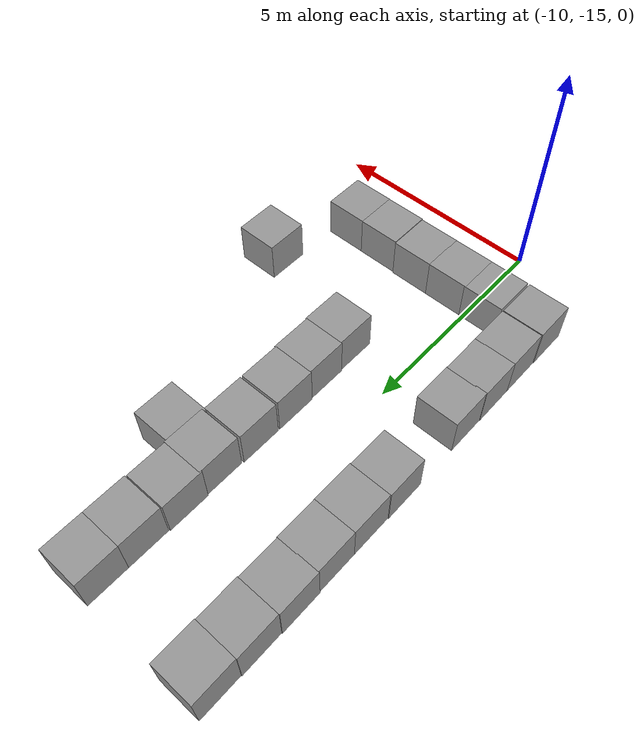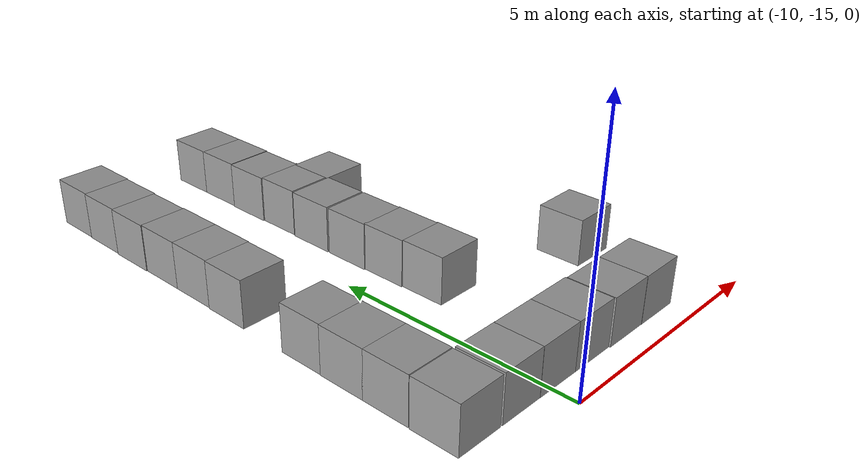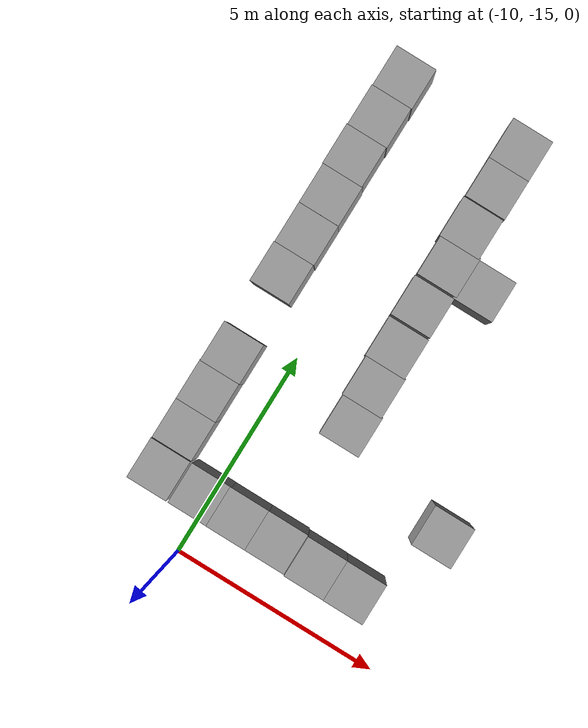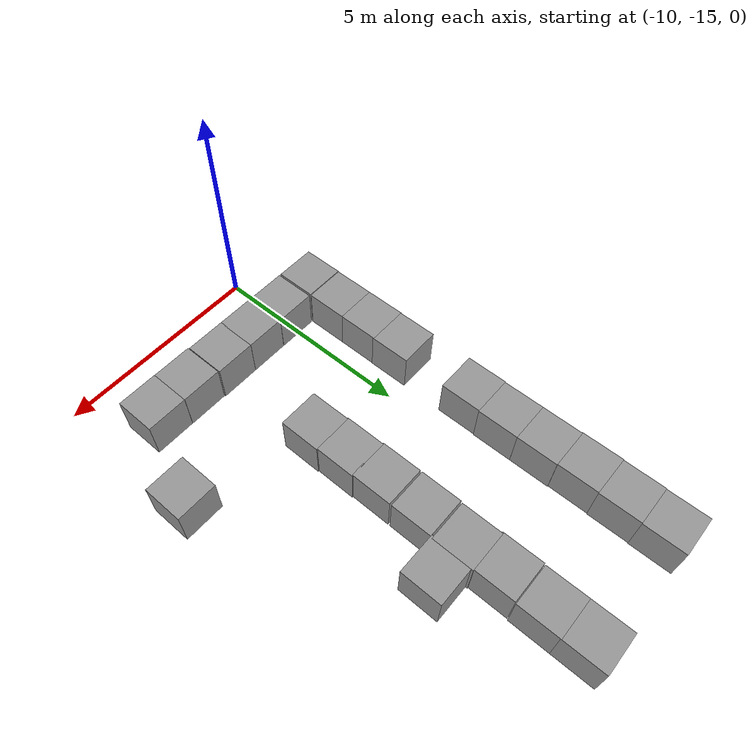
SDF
<sdf version="1.7">
 <model name="maze2.1">
  <link name="link_1_clone_123">
   <inertial>
    <mass>1</mass>
    <inertia>
     <ixx>0.166667</ixx>
     <ixy>0</ixy>
     <ixz>0</ixz>
     <iyy>0.166667</iyy>
     <iyz>0</iyz>
     <izz>0.166667</izz>
    </inertia>
   </inertial>
   <pose>-8.24503 -3.62535 0 0 -0 0</pose>
   <visual name="visual">
    <geometry><box><size>1 1 1</size></box></geometry>
    <material>
     <lighting>1</lighting>
     <script><uri>file://media/materials/scripts/gazebo.material</uri><name>Gazebo/Grey</name></script>
     <shader type="pixel"><normal_map>__default__</normal_map></shader>
     <ambient>0.3 0.3 0.3 1</ambient>
     <diffuse>0.7 0.7 0.7 1</diffuse>
     <specular>0.01 0.01 0.01 1</specular>
     <emissive>0 0 0 1</emissive>
    </material>
   </visual>
   <collision name="collision">
    <geometry><box><size>1 1 1</size></box></geometry>
    <surface>
     <friction>
      <ode><mu>1</mu><mu2>1</mu2><fdir1>0 0 0</fdir1><slip1>0</slip1><slip2>0</slip2></ode>
      <torsional>
       <coefficient>1</coefficient>
       <patch_radius>0</patch_radius>
       <surface_radius>0</surface_radius>
       <use_patch_radius>1</use_patch_radius>
       <ode><slip>0</slip></ode>
      </torsional>
     </friction>
     <bounce><restitution_coefficient>0</restitution_coefficient><threshold>1e+06</threshold></bounce>
     <contact>
      <collide_without_contact>0</collide_without_contact>
      <collide_without_contact_bitmask>1</collide_without_contact_bitmask>
      <collide_bitmask>1</collide_bitmask>
      <ode>
       <soft_cfm>0</soft_cfm>
       <soft_erp>0.2</soft_erp>
       <kp>1e+13</kp>
       <kd>1</kd>
       <max_vel>0.01</max_vel>
       <min_depth>0</min_depth>
      </ode>
      <bullet>
       <split_impulse>1</split_impulse>
       <split_impulse_penetration_threshold>-0.01</split_impulse_penetration_threshold>
       <soft_cfm>0</soft_cfm>
       <soft_erp>0.2</soft_erp>
       <kp>1e+13</kp>
       <kd>1</kd>
      </bullet>
     </contact>
    </surface>
   </collision>
  </link>
  <link name="link_1_clone_124">
   <inertial>
    <mass>1</mass>
    <inertia>
     <ixx>0.166667</ixx>
     <ixy>0</ixy>
     <ixz>0</ixz>
     <iyy>0.166667</iyy>
     <iyz>0</iyz>
     <izz>0.166667</izz>
    </inertia>
   </inertial>
   <pose>-8.24525 -4.60259 0 0 -0 0</pose>
   <visual name="visual">
    <geometry><box><size>1 1 1</size></box></geometry>
    <material>
     <lighting>1</lighting>
     <script><uri>file://media/materials/scripts/gazebo.material</uri><name>Gazebo/Grey</name></script>
     <shader type="pixel"><normal_map>__default__</normal_map></shader>
     <ambient>0.3 0.3 0.3 1</ambient>
     <diffuse>0.7 0.7 0.7 1</diffuse>
     <specular>0.01 0.01 0.01 1</specular>
     <emissive>0 0 0 1</emissive>
    </material>
   </visual>
   <collision name="collision">
    <geometry><box><size>1 1 1</size></box></geometry>
    <surface>
     <friction>
      <ode><mu>1</mu><mu2>1</mu2><fdir1>0 0 0</fdir1><slip1>0</slip1><slip2>0</slip2></ode>
      <torsional>
       <coefficient>1</coefficient>
       <patch_radius>0</patch_radius>
       <surface_radius>0</surface_radius>
       <use_patch_radius>1</use_patch_radius>
       <ode><slip>0</slip></ode>
      </torsional>
     </friction>
     <bounce><restitution_coefficient>0</restitution_coefficient><threshold>1e+06</threshold></bounce>
     <contact>
      <collide_without_contact>0</collide_without_contact>
      <collide_without_contact_bitmask>1</collide_without_contact_bitmask>
      <collide_bitmask>1</collide_bitmask>
      <ode>
       <soft_cfm>0</soft_cfm>
       <soft_erp>0.2</soft_erp>
       <kp>1e+13</kp>
       <kd>1</kd>
       <max_vel>0.01</max_vel>
       <min_depth>0</min_depth>
      </ode>
      <bullet>
       <split_impulse>1</split_impulse>
       <split_impulse_penetration_threshold>-0.01</split_impulse_penetration_threshold>
       <soft_cfm>0</soft_cfm>
       <soft_erp>0.2</soft_erp>
       <kp>1e+13</kp>
       <kd>1</kd>
      </bullet>
     </contact>
    </surface>
   </collision>
  </link>
  <link name="link_1_clone_125">
   <inertial>
    <mass>1</mass>
    <inertia>
     <ixx>0.166667</ixx>
     <ixy>0</ixy>
     <ixz>0</ixz>
     <iyy>0.166667</iyy>
     <iyz>0</iyz>
     <izz>0.166667</izz>
    </inertia>
   </inertial>
   <pose>-8.26767 -5.62535 0 0 -0 0</pose>
   <visual name="visual">
    <geometry><box><size>1 1 1</size></box></geometry>
    <material>
     <lighting>1</lighting>
     <script><uri>file://media/materials/scripts/gazebo.material</uri><name>Gazebo/Grey</name></script>
     <shader type="pixel"><normal_map>__default__</normal_map></shader>
     <ambient>0.3 0.3 0.3 1</ambient>
     <diffuse>0.7 0.7 0.7 1</diffuse>
     <specular>0.01 0.01 0.01 1</specular>
     <emissive>0 0 0 1</emissive>
    </material>
   </visual>
   <collision name="collision">
    <geometry><box><size>1 1 1</size></box></geometry>
    <surface>
     <friction>
      <ode><mu>1</mu><mu2>1</mu2><fdir1>0 0 0</fdir1><slip1>0</slip1><slip2>0</slip2></ode>
      <torsional>
       <coefficient>1</coefficient>
       <patch_radius>0</patch_radius>
       <surface_radius>0</surface_radius>
       <use_patch_radius>1</use_patch_radius>
       <ode><slip>0</slip></ode>
      </torsional>
     </friction>
     <bounce><restitution_coefficient>0</restitution_coefficient><threshold>1e+06</threshold></bounce>
     <contact>
      <collide_without_contact>0</collide_without_contact>
      <collide_without_contact_bitmask>1</collide_without_contact_bitmask>
      <collide_bitmask>1</collide_bitmask>
      <ode>
       <soft_cfm>0</soft_cfm>
       <soft_erp>0.2</soft_erp>
       <kp>1e+13</kp>
       <kd>1</kd>
       <max_vel>0.01</max_vel>
       <min_depth>0</min_depth>
      </ode>
      <bullet>
       <split_impulse>1</split_impulse>
       <split_impulse_penetration_threshold>-0.01</split_impulse_penetration_threshold>
       <soft_cfm>0</soft_cfm>
       <soft_erp>0.2</soft_erp>
       <kp>1e+13</kp>
       <kd>1</kd>
      </bullet>
     </contact>
    </surface>
   </collision>
  </link>
  <link name="link_1_clone_126">
   <inertial>
    <mass>1</mass>
    <inertia>
     <ixx>0.166667</ixx>
     <ixy>0</ixy>
     <ixz>0</ixz>
     <iyy>0.166667</iyy>
     <iyz>0</iyz>
     <izz>0.166667</izz>
    </inertia>
   </inertial>
   <pose>-8.26767 -7.62431 0 0 -0 0</pose>
   <visual name="visual">
    <geometry><box><size>1 1 1</size></box></geometry>
    <material>
     <lighting>1</lighting>
     <script><uri>file://media/materials/scripts/gazebo.material</uri><name>Gazebo/Grey</name></script>
     <shader type="pixel"><normal_map>__default__</normal_map></shader>
     <ambient>0.3 0.3 0.3 1</ambient>
     <diffuse>0.7 0.7 0.7 1</diffuse>
     <specular>0.01 0.01 0.01 1</specular>
     <emissive>0 0 0 1</emissive>
    </material>
   </visual>
   <collision name="collision">
    <geometry><box><size>1 1 1</size></box></geometry>
    <surface>
     <friction>
      <ode><mu>1</mu><mu2>1</mu2><fdir1>0 0 0</fdir1><slip1>0</slip1><slip2>0</slip2></ode>
      <torsional>
       <coefficient>1</coefficient>
       <patch_radius>0</patch_radius>
       <surface_radius>0</surface_radius>
       <use_patch_radius>1</use_patch_radius>
       <ode><slip>0</slip></ode>
      </torsional>
     </friction>
     <bounce><restitution_coefficient>0</restitution_coefficient><threshold>1e+06</threshold></bounce>
     <contact>
      <collide_without_contact>0</collide_without_contact>
      <collide_without_contact_bitmask>1</collide_without_contact_bitmask>
      <collide_bitmask>1</collide_bitmask>
      <ode>
       <soft_cfm>0</soft_cfm>
       <soft_erp>0.2</soft_erp>
       <kp>1e+13</kp>
       <kd>1</kd>
       <max_vel>0.01</max_vel>
       <min_depth>0</min_depth>
      </ode>
      <bullet>
       <split_impulse>1</split_impulse>
       <split_impulse_penetration_threshold>-0.01</split_impulse_penetration_threshold>
       <soft_cfm>0</soft_cfm>
       <soft_erp>0.2</soft_erp>
       <kp>1e+13</kp>
       <kd>1</kd>
      </bullet>
     </contact>
    </surface>
   </collision>
  </link>
  <link name="link_1_clone_127">
   <inertial>
    <mass>1</mass>
    <inertia>
     <ixx>0.166667</ixx>
     <ixy>0</ixy>
     <ixz>0</ixz>
     <iyy>0.166667</iyy>
     <iyz>0</iyz>
     <izz>0.166667</izz>
    </inertia>
   </inertial>
   <pose>-8.26778 -8.6697 0 0 -0 0</pose>
   <visual name="visual">
    <geometry><box><size>1 1 1</size></box></geometry>
    <material>
     <lighting>1</lighting>
     <script><uri>file://media/materials/scripts/gazebo.material</uri><name>Gazebo/Grey</name></script>
     <shader type="pixel"><normal_map>__default__</normal_map></shader>
     <ambient>0.3 0.3 0.3 1</ambient>
     <diffuse>0.7 0.7 0.7 1</diffuse>
     <specular>0.01 0.01 0.01 1</specular>
     <emissive>0 0 0 1</emissive>
    </material>
   </visual>
   <collision name="collision">
    <geometry><box><size>1 1 1</size></box></geometry>
    <surface>
     <friction>
      <ode><mu>1</mu><mu2>1</mu2><fdir1>0 0 0</fdir1><slip1>0</slip1><slip2>0</slip2></ode>
      <torsional>
       <coefficient>1</coefficient>
       <patch_radius>0</patch_radius>
       <surface_radius>0</surface_radius>
       <use_patch_radius>1</use_patch_radius>
       <ode><slip>0</slip></ode>
      </torsional>
     </friction>
     <bounce><restitution_coefficient>0</restitution_coefficient><threshold>1e+06</threshold></bounce>
     <contact>
      <collide_without_contact>0</collide_without_contact>
      <collide_without_contact_bitmask>1</collide_without_contact_bitmask>
      <collide_bitmask>1</collide_bitmask>
      <ode>
       <soft_cfm>0</soft_cfm>
       <soft_erp>0.2</soft_erp>
       <kp>1e+13</kp>
       <kd>1</kd>
       <max_vel>0.01</max_vel>
       <min_depth>0</min_depth>
      </ode>
      <bullet>
       <split_impulse>1</split_impulse>
       <split_impulse_penetration_threshold>-0.01</split_impulse_penetration_threshold>
       <soft_cfm>0</soft_cfm>
       <soft_erp>0.2</soft_erp>
       <kp>1e+13</kp>
       <kd>1</kd>
      </bullet>
     </contact>
    </surface>
   </collision>
  </link>
  <link name="link_1_clone_128">
   <inertial>
    <mass>1</mass>
    <inertia>
     <ixx>0.166667</ixx>
     <ixy>0</ixy>
     <ixz>0</ixz>
     <iyy>0.166667</iyy>
     <iyz>0</iyz>
     <izz>0.166667</izz>
    </inertia>
   </inertial>
   <pose>-8.24503 -9.64706 0 0 -0 0</pose>
   <visual name="visual">
    <geometry><box><size>1 1 1</size></box></geometry>
    <material>
     <lighting>1</lighting>
     <script><uri>file://media/materials/scripts/gazebo.material</uri><name>Gazebo/Grey</name></script>
     <shader type="pixel"><normal_map>__default__</normal_map></shader>
     <ambient>0.3 0.3 0.3 1</ambient>
     <diffuse>0.7 0.7 0.7 1</diffuse>
     <specular>0.01 0.01 0.01 1</specular>
     <emissive>0 0 0 1</emissive>
    </material>
   </visual>
   <collision name="collision">
    <geometry><box><size>1 1 1</size></box></geometry>
    <surface>
     <friction>
      <ode><mu>1</mu><mu2>1</mu2><fdir1>0 0 0</fdir1><slip1>0</slip1><slip2>0</slip2></ode>
      <torsional>
       <coefficient>1</coefficient>
       <patch_radius>0</patch_radius>
       <surface_radius>0</surface_radius>
       <use_patch_radius>1</use_patch_radius>
       <ode><slip>0</slip></ode>
      </torsional>
     </friction>
     <bounce><restitution_coefficient>0</restitution_coefficient><threshold>1e+06</threshold></bounce>
     <contact>
      <collide_without_contact>0</collide_without_contact>
      <collide_without_contact_bitmask>1</collide_without_contact_bitmask>
      <collide_bitmask>1</collide_bitmask>
      <ode>
       <soft_cfm>0</soft_cfm>
       <soft_erp>0.2</soft_erp>
       <kp>1e+13</kp>
       <kd>1</kd>
       <max_vel>0.01</max_vel>
       <min_depth>0</min_depth>
      </ode>
      <bullet>
       <split_impulse>1</split_impulse>
       <split_impulse_penetration_threshold>-0.01</split_impulse_penetration_threshold>
       <soft_cfm>0</soft_cfm>
       <soft_erp>0.2</soft_erp>
       <kp>1e+13</kp>
       <kd>1</kd>
      </bullet>
     </contact>
    </surface>
   </collision>
  </link>
  <link name="link_1_clone_129">
   <inertial>
    <mass>1</mass>
    <inertia>
     <ixx>0.166667</ixx>
     <ixy>0</ixy>
     <ixz>0</ixz>
     <iyy>0.166667</iyy>
     <iyz>0</iyz>
     <izz>0.166667</izz>
    </inertia>
   </inertial>
   <pose>-8.2226 -10.6244 0 0 -0 0</pose>
   <visual name="visual">
    <geometry><box><size>1 1 1</size></box></geometry>
    <material>
     <lighting>1</lighting>
     <script><uri>file://media/materials/scripts/gazebo.material</uri><name>Gazebo/Grey</name></script>
     <shader type="pixel"><normal_map>__default__</normal_map></shader>
     <ambient>0.3 0.3 0.3 1</ambient>
     <diffuse>0.7 0.7 0.7 1</diffuse>
     <specular>0.01 0.01 0.01 1</specular>
     <emissive>0 0 0 1</emissive>
    </material>
   </visual>
   <collision name="collision">
    <geometry><box><size>1 1 1</size></box></geometry>
    <surface>
     <friction>
      <ode><mu>1</mu><mu2>1</mu2><fdir1>0 0 0</fdir1><slip1>0</slip1><slip2>0</slip2></ode>
      <torsional>
       <coefficient>1</coefficient>
       <patch_radius>0</patch_radius>
       <surface_radius>0</surface_radius>
       <use_patch_radius>1</use_patch_radius>
       <ode><slip>0</slip></ode>
      </torsional>
     </friction>
     <bounce><restitution_coefficient>0</restitution_coefficient><threshold>1e+06</threshold></bounce>
     <contact>
      <collide_without_contact>0</collide_without_contact>
      <collide_without_contact_bitmask>1</collide_without_contact_bitmask>
      <collide_bitmask>1</collide_bitmask>
      <ode>
       <soft_cfm>0</soft_cfm>
       <soft_erp>0.2</soft_erp>
       <kp>1e+13</kp>
       <kd>1</kd>
       <max_vel>0.01</max_vel>
       <min_depth>0</min_depth>
      </ode>
      <bullet>
       <split_impulse>1</split_impulse>
       <split_impulse_penetration_threshold>-0.01</split_impulse_penetration_threshold>
       <soft_cfm>0</soft_cfm>
       <soft_erp>0.2</soft_erp>
       <kp>1e+13</kp>
       <kd>1</kd>
      </bullet>
     </contact>
    </surface>
   </collision>
  </link>
  <link name="link_1_clone_131">
   <inertial>
    <mass>1</mass>
    <inertia>
     <ixx>0.166667</ixx>
     <ixy>0</ixy>
     <ixz>0</ixz>
     <iyy>0.166667</iyy>
     <iyz>0</iyz>
     <izz>0.166667</izz>
    </inertia>
   </inertial>
   <pose>-5.26156 -11.6208 0 0 -0 0</pose>
   <visual name="visual">
    <geometry><box><size>1 1 1</size></box></geometry>
    <material>
     <lighting>1</lighting>
     <script><uri>file://media/materials/scripts/gazebo.material</uri><name>Gazebo/Grey</name></script>
     <shader type="pixel"><normal_map>__default__</normal_map></shader>
     <ambient>0.3 0.3 0.3 1</ambient>
     <diffuse>0.7 0.7 0.7 1</diffuse>
     <specular>0.01 0.01 0.01 1</specular>
     <emissive>0 0 0 1</emissive>
    </material>
   </visual>
   <collision name="collision">
    <geometry><box><size>1 1 1</size></box></geometry>
    <surface>
     <friction>
      <ode><mu>1</mu><mu2>1</mu2><fdir1>0 0 0</fdir1><slip1>0</slip1><slip2>0</slip2></ode>
      <torsional>
       <coefficient>1</coefficient>
       <patch_radius>0</patch_radius>
       <surface_radius>0</surface_radius>
       <use_patch_radius>1</use_patch_radius>
       <ode><slip>0</slip></ode>
      </torsional>
     </friction>
     <bounce><restitution_coefficient>0</restitution_coefficient><threshold>1e+06</threshold></bounce>
     <contact>
      <collide_without_contact>0</collide_without_contact>
      <collide_without_contact_bitmask>1</collide_without_contact_bitmask>
      <collide_bitmask>1</collide_bitmask>
      <ode>
       <soft_cfm>0</soft_cfm>
       <soft_erp>0.2</soft_erp>
       <kp>1e+13</kp>
       <kd>1</kd>
       <max_vel>0.01</max_vel>
       <min_depth>0</min_depth>
      </ode>
      <bullet>
       <split_impulse>1</split_impulse>
       <split_impulse_penetration_threshold>-0.01</split_impulse_penetration_threshold>
       <soft_cfm>0</soft_cfm>
       <soft_erp>0.2</soft_erp>
       <kp>1e+13</kp>
       <kd>1</kd>
      </bullet>
     </contact>
    </surface>
   </collision>
  </link>
  <link name="link_1_clone_210">
   <inertial>
    <mass>1</mass>
    <inertia>
     <ixx>0.166667</ixx>
     <ixy>0</ixy>
     <ixz>0</ixz>
     <iyy>0.166667</iyy>
     <iyz>0</iyz>
     <izz>0.166667</izz>
    </inertia>
   </inertial>
   <pose>-8.24377 -6.57996 0 0 -0 0</pose>
   <visual name="visual">
    <geometry><box><size>1 1 1</size></box></geometry>
    <material>
     <lighting>1</lighting>
     <script><uri>file://media/materials/scripts/gazebo.material</uri><name>Gazebo/Grey</name></script>
     <shader type="pixel"><normal_map>__default__</normal_map></shader>
     <ambient>0.3 0.3 0.3 1</ambient>
     <diffuse>0.7 0.7 0.7 1</diffuse>
     <specular>0.01 0.01 0.01 1</specular>
     <emissive>0 0 0 1</emissive>
    </material>
   </visual>
   <collision name="collision">
    <geometry><box><size>1 1 1</size></box></geometry>
    <surface>
     <friction>
      <ode><mu>1</mu><mu2>1</mu2><fdir1>0 0 0</fdir1><slip1>0</slip1><slip2>0</slip2></ode>
      <torsional>
       <coefficient>1</coefficient>
       <patch_radius>0</patch_radius>
       <surface_radius>0</surface_radius>
       <use_patch_radius>1</use_patch_radius>
       <ode><slip>0</slip></ode>
      </torsional>
     </friction>
     <bounce><restitution_coefficient>0</restitution_coefficient><threshold>1e+06</threshold></bounce>
     <contact>
      <collide_without_contact>0</collide_without_contact>
      <collide_without_contact_bitmask>1</collide_without_contact_bitmask>
      <collide_bitmask>1</collide_bitmask>
      <ode>
       <soft_cfm>0</soft_cfm>
       <soft_erp>0.2</soft_erp>
       <kp>1e+13</kp>
       <kd>1</kd>
       <max_vel>0.01</max_vel>
       <min_depth>0</min_depth>
      </ode>
      <bullet>
       <split_impulse>1</split_impulse>
       <split_impulse_penetration_threshold>-0.01</split_impulse_penetration_threshold>
       <soft_cfm>0</soft_cfm>
       <soft_erp>0.2</soft_erp>
       <kp>1e+13</kp>
       <kd>1</kd>
      </bullet>
     </contact>
    </surface>
   </collision>
  </link>
  <link name="link_1_clone_211">
   <inertial>
    <mass>1</mass>
    <inertia>
     <ixx>0.166667</ixx>
     <ixy>0</ixy>
     <ixz>0</ixz>
     <iyy>0.166667</iyy>
     <iyz>0</iyz>
     <izz>0.166667</izz>
    </inertia>
   </inertial>
   <pose>-7.31224 -6.62535 0 0 -0 0</pose>
   <visual name="visual">
    <geometry><box><size>1 1 1</size></box></geometry>
    <material>
     <lighting>1</lighting>
     <script><uri>file://media/materials/scripts/gazebo.material</uri><name>Gazebo/Grey</name></script>
     <shader type="pixel"><normal_map>__default__</normal_map></shader>
     <ambient>0.3 0.3 0.3 1</ambient>
     <diffuse>0.7 0.7 0.7 1</diffuse>
     <specular>0.01 0.01 0.01 1</specular>
     <emissive>0 0 0 1</emissive>
    </material>
   </visual>
   <collision name="collision">
    <geometry><box><size>1 1 1</size></box></geometry>
    <surface>
     <friction>
      <ode><mu>1</mu><mu2>1</mu2><fdir1>0 0 0</fdir1><slip1>0</slip1><slip2>0</slip2></ode>
      <torsional>
       <coefficient>1</coefficient>
       <patch_radius>0</patch_radius>
       <surface_radius>0</surface_radius>
       <use_patch_radius>1</use_patch_radius>
       <ode><slip>0</slip></ode>
      </torsional>
     </friction>
     <bounce><restitution_coefficient>0</restitution_coefficient><threshold>1e+06</threshold></bounce>
     <contact>
      <collide_without_contact>0</collide_without_contact>
      <collide_without_contact_bitmask>1</collide_without_contact_bitmask>
      <collide_bitmask>1</collide_bitmask>
      <ode>
       <soft_cfm>0</soft_cfm>
       <soft_erp>0.2</soft_erp>
       <kp>1e+13</kp>
       <kd>1</kd>
       <max_vel>0.01</max_vel>
       <min_depth>0</min_depth>
      </ode>
      <bullet>
       <split_impulse>1</split_impulse>
       <split_impulse_penetration_threshold>-0.01</split_impulse_penetration_threshold>
       <soft_cfm>0</soft_cfm>
       <soft_erp>0.2</soft_erp>
       <kp>1e+13</kp>
       <kd>1</kd>
      </bullet>
     </contact>
    </surface>
   </collision>
  </link>
  <link name="link_1_clone_28">
   <inertial>
    <mass>1</mass>
    <inertia>
     <ixx>0.166667</ixx>
     <ixy>0</ixy>
     <ixz>0</ixz>
     <iyy>0.166667</iyy>
     <iyz>0</iyz>
     <izz>0.166667</izz>
    </inertia>
   </inertial>
   <pose>-11.2109 -3.62535 0 0 -0 0</pose>
   <visual name="visual">
    <geometry><box><size>1 1 1</size></box></geometry>
    <material>
     <lighting>1</lighting>
     <script><uri>file://media/materials/scripts/gazebo.material</uri><name>Gazebo/Grey</name></script>
     <shader type="pixel"><normal_map>__default__</normal_map></shader>
     <ambient>0.3 0.3 0.3 1</ambient>
     <diffuse>0.7 0.7 0.7 1</diffuse>
     <specular>0.01 0.01 0.01 1</specular>
     <emissive>0 0 0 1</emissive>
    </material>
   </visual>
   <collision name="collision">
    <geometry><box><size>1 1 1</size></box></geometry>
    <surface>
     <friction>
      <ode><mu>1</mu><mu2>1</mu2><fdir1>0 0 0</fdir1><slip1>0</slip1><slip2>0</slip2></ode>
      <torsional>
       <coefficient>1</coefficient>
       <patch_radius>0</patch_radius>
       <surface_radius>0</surface_radius>
       <use_patch_radius>1</use_patch_radius>
       <ode><slip>0</slip></ode>
      </torsional>
     </friction>
     <bounce><restitution_coefficient>0</restitution_coefficient><threshold>1e+06</threshold></bounce>
     <contact>
      <collide_without_contact>0</collide_without_contact>
      <collide_without_contact_bitmask>1</collide_without_contact_bitmask>
      <collide_bitmask>1</collide_bitmask>
      <ode>
       <soft_cfm>0</soft_cfm>
       <soft_erp>0.2</soft_erp>
       <kp>1e+13</kp>
       <kd>1</kd>
       <max_vel>0.01</max_vel>
       <min_depth>0</min_depth>
      </ode>
      <bullet>
       <split_impulse>1</split_impulse>
       <split_impulse_penetration_threshold>-0.01</split_impulse_penetration_threshold>
       <soft_cfm>0</soft_cfm>
       <soft_erp>0.2</soft_erp>
       <kp>1e+13</kp>
       <kd>1</kd>
      </bullet>
     </contact>
    </surface>
   </collision>
  </link>
  <link name="link_1_clone_29">
   <inertial>
    <mass>1</mass>
    <inertia>
     <ixx>0.166667</ixx>
     <ixy>0</ixy>
     <ixz>0</ixz>
     <iyy>0.166667</iyy>
     <iyz>0</iyz>
     <izz>0.166667</izz>
    </inertia>
   </inertial>
   <pose>-11.2263 -4.62535 0 0 -0 0</pose>
   <visual name="visual">
    <geometry><box><size>1 1 1</size></box></geometry>
    <material>
     <lighting>1</lighting>
     <script><uri>file://media/materials/scripts/gazebo.material</uri><name>Gazebo/Grey</name></script>
     <shader type="pixel"><normal_map>__default__</normal_map></shader>
     <ambient>0.3 0.3 0.3 1</ambient>
     <diffuse>0.7 0.7 0.7 1</diffuse>
     <specular>0.01 0.01 0.01 1</specular>
     <emissive>0 0 0 1</emissive>
    </material>
   </visual>
   <collision name="collision">
    <geometry><box><size>1 1 1</size></box></geometry>
    <surface>
     <friction>
      <ode><mu>1</mu><mu2>1</mu2><fdir1>0 0 0</fdir1><slip1>0</slip1><slip2>0</slip2></ode>
      <torsional>
       <coefficient>1</coefficient>
       <patch_radius>0</patch_radius>
       <surface_radius>0</surface_radius>
       <use_patch_radius>1</use_patch_radius>
       <ode><slip>0</slip></ode>
      </torsional>
     </friction>
     <bounce><restitution_coefficient>0</restitution_coefficient><threshold>1e+06</threshold></bounce>
     <contact>
      <collide_without_contact>0</collide_without_contact>
      <collide_without_contact_bitmask>1</collide_without_contact_bitmask>
      <collide_bitmask>1</collide_bitmask>
      <ode>
       <soft_cfm>0</soft_cfm>
       <soft_erp>0.2</soft_erp>
       <kp>1e+13</kp>
       <kd>1</kd>
       <max_vel>0.01</max_vel>
       <min_depth>0</min_depth>
      </ode>
      <bullet>
       <split_impulse>1</split_impulse>
       <split_impulse_penetration_threshold>-0.01</split_impulse_penetration_threshold>
       <soft_cfm>0</soft_cfm>
       <soft_erp>0.2</soft_erp>
       <kp>1e+13</kp>
       <kd>1</kd>
      </bullet>
     </contact>
    </surface>
   </collision>
  </link>
  <link name="link_1_clone_30">
   <inertial>
    <mass>1</mass>
    <inertia>
     <ixx>0.166667</ixx>
     <ixy>0</ixy>
     <ixz>0</ixz>
     <iyy>0.166667</iyy>
     <iyz>0</iyz>
     <izz>0.166667</izz>
    </inertia>
   </inertial>
   <pose>-11.2415 -5.62535 0 0 -0 0</pose>
   <visual name="visual">
    <geometry><box><size>1 1 1</size></box></geometry>
    <material>
     <lighting>1</lighting>
     <script><uri>file://media/materials/scripts/gazebo.material</uri><name>Gazebo/Grey</name></script>
     <shader type="pixel"><normal_map>__default__</normal_map></shader>
     <ambient>0.3 0.3 0.3 1</ambient>
     <diffuse>0.7 0.7 0.7 1</diffuse>
     <specular>0.01 0.01 0.01 1</specular>
     <emissive>0 0 0 1</emissive>
    </material>
   </visual>
   <collision name="collision">
    <geometry><box><size>1 1 1</size></box></geometry>
    <surface>
     <friction>
      <ode><mu>1</mu><mu2>1</mu2><fdir1>0 0 0</fdir1><slip1>0</slip1><slip2>0</slip2></ode>
      <torsional>
       <coefficient>1</coefficient>
       <patch_radius>0</patch_radius>
       <surface_radius>0</surface_radius>
       <use_patch_radius>1</use_patch_radius>
       <ode><slip>0</slip></ode>
      </torsional>
     </friction>
     <bounce><restitution_coefficient>0</restitution_coefficient><threshold>1e+06</threshold></bounce>
     <contact>
      <collide_without_contact>0</collide_without_contact>
      <collide_without_contact_bitmask>1</collide_without_contact_bitmask>
      <collide_bitmask>1</collide_bitmask>
      <ode>
       <soft_cfm>0</soft_cfm>
       <soft_erp>0.2</soft_erp>
       <kp>1e+13</kp>
       <kd>1</kd>
       <max_vel>0.01</max_vel>
       <min_depth>0</min_depth>
      </ode>
      <bullet>
       <split_impulse>1</split_impulse>
       <split_impulse_penetration_threshold>-0.01</split_impulse_penetration_threshold>
       <soft_cfm>0</soft_cfm>
       <soft_erp>0.2</soft_erp>
       <kp>1e+13</kp>
       <kd>1</kd>
      </bullet>
     </contact>
    </surface>
   </collision>
  </link>
  <link name="link_1_clone_31">
   <inertial>
    <mass>1</mass>
    <inertia>
     <ixx>0.166667</ixx>
     <ixy>0</ixy>
     <ixz>0</ixz>
     <iyy>0.166667</iyy>
     <iyz>0</iyz>
     <izz>0.166667</izz>
    </inertia>
   </inertial>
   <pose>-11.2262 -6.60997 0 0 -0 0</pose>
   <visual name="visual">
    <geometry><box><size>1 1 1</size></box></geometry>
    <material>
     <lighting>1</lighting>
     <script><uri>file://media/materials/scripts/gazebo.material</uri><name>Gazebo/Grey</name></script>
     <shader type="pixel"><normal_map>__default__</normal_map></shader>
     <ambient>0.3 0.3 0.3 1</ambient>
     <diffuse>0.7 0.7 0.7 1</diffuse>
     <specular>0.01 0.01 0.01 1</specular>
     <emissive>0 0 0 1</emissive>
    </material>
   </visual>
   <collision name="collision">
    <geometry><box><size>1 1 1</size></box></geometry>
    <surface>
     <friction>
      <ode><mu>1</mu><mu2>1</mu2><fdir1>0 0 0</fdir1><slip1>0</slip1><slip2>0</slip2></ode>
      <torsional>
       <coefficient>1</coefficient>
       <patch_radius>0</patch_radius>
       <surface_radius>0</surface_radius>
       <use_patch_radius>1</use_patch_radius>
       <ode><slip>0</slip></ode>
      </torsional>
     </friction>
     <bounce><restitution_coefficient>0</restitution_coefficient><threshold>1e+06</threshold></bounce>
     <contact>
      <collide_without_contact>0</collide_without_contact>
      <collide_without_contact_bitmask>1</collide_without_contact_bitmask>
      <collide_bitmask>1</collide_bitmask>
      <ode>
       <soft_cfm>0</soft_cfm>
       <soft_erp>0.2</soft_erp>
       <kp>1e+13</kp>
       <kd>1</kd>
       <max_vel>0.01</max_vel>
       <min_depth>0</min_depth>
      </ode>
      <bullet>
       <split_impulse>1</split_impulse>
       <split_impulse_penetration_threshold>-0.01</split_impulse_penetration_threshold>
       <soft_cfm>0</soft_cfm>
       <soft_erp>0.2</soft_erp>
       <kp>1e+13</kp>
       <kd>1</kd>
      </bullet>
     </contact>
    </surface>
   </collision>
  </link>
  <link name="link_1_clone_32">
   <inertial>
    <mass>1</mass>
    <inertia>
     <ixx>0.166667</ixx>
     <ixy>0</ixy>
     <ixz>0</ixz>
     <iyy>0.166667</iyy>
     <iyz>0</iyz>
     <izz>0.166667</izz>
    </inertia>
   </inertial>
   <pose>-11.2262 -7.61004 0 0 -0 0</pose>
   <visual name="visual">
    <geometry><box><size>1 1 1</size></box></geometry>
    <material>
     <lighting>1</lighting>
     <script><uri>file://media/materials/scripts/gazebo.material</uri><name>Gazebo/Grey</name></script>
     <shader type="pixel"><normal_map>__default__</normal_map></shader>
     <ambient>0.3 0.3 0.3 1</ambient>
     <diffuse>0.7 0.7 0.7 1</diffuse>
     <specular>0.01 0.01 0.01 1</specular>
     <emissive>0 0 0 1</emissive>
    </material>
   </visual>
   <collision name="collision">
    <geometry><box><size>1 1 1</size></box></geometry>
    <surface>
     <friction>
      <ode><mu>1</mu><mu2>1</mu2><fdir1>0 0 0</fdir1><slip1>0</slip1><slip2>0</slip2></ode>
      <torsional>
       <coefficient>1</coefficient>
       <patch_radius>0</patch_radius>
       <surface_radius>0</surface_radius>
       <use_patch_radius>1</use_patch_radius>
       <ode><slip>0</slip></ode>
      </torsional>
     </friction>
     <bounce><restitution_coefficient>0</restitution_coefficient><threshold>1e+06</threshold></bounce>
     <contact>
      <collide_without_contact>0</collide_without_contact>
      <collide_without_contact_bitmask>1</collide_without_contact_bitmask>
      <collide_bitmask>1</collide_bitmask>
      <ode>
       <soft_cfm>0</soft_cfm>
       <soft_erp>0.2</soft_erp>
       <kp>1e+13</kp>
       <kd>1</kd>
       <max_vel>0.01</max_vel>
       <min_depth>0</min_depth>
      </ode>
      <bullet>
       <split_impulse>1</split_impulse>
       <split_impulse_penetration_threshold>-0.01</split_impulse_penetration_threshold>
       <soft_cfm>0</soft_cfm>
       <soft_erp>0.2</soft_erp>
       <kp>1e+13</kp>
       <kd>1</kd>
      </bullet>
     </contact>
    </surface>
   </collision>
  </link>
  <link name="link_1_clone_33">
   <inertial>
    <mass>1</mass>
    <inertia>
     <ixx>0.166667</ixx>
     <ixy>0</ixy>
     <ixz>0</ixz>
     <iyy>0.166667</iyy>
     <iyz>0</iyz>
     <izz>0.166667</izz>
    </inertia>
   </inertial>
   <pose>-11.2415 -8.61004 0 0 -0 0</pose>
   <visual name="visual">
    <geometry><box><size>1 1 1</size></box></geometry>
    <material>
     <lighting>1</lighting>
     <script><uri>file://media/materials/scripts/gazebo.material</uri><name>Gazebo/Grey</name></script>
     <shader type="pixel"><normal_map>__default__</normal_map></shader>
     <ambient>0.3 0.3 0.3 1</ambient>
     <diffuse>0.7 0.7 0.7 1</diffuse>
     <specular>0.01 0.01 0.01 1</specular>
     <emissive>0 0 0 1</emissive>
    </material>
   </visual>
   <collision name="collision">
    <geometry><box><size>1 1 1</size></box></geometry>
    <surface>
     <friction>
      <ode><mu>1</mu><mu2>1</mu2><fdir1>0 0 0</fdir1><slip1>0</slip1><slip2>0</slip2></ode>
      <torsional>
       <coefficient>1</coefficient>
       <patch_radius>0</patch_radius>
       <surface_radius>0</surface_radius>
       <use_patch_radius>1</use_patch_radius>
       <ode><slip>0</slip></ode>
      </torsional>
     </friction>
     <bounce><restitution_coefficient>0</restitution_coefficient><threshold>1e+06</threshold></bounce>
     <contact>
      <collide_without_contact>0</collide_without_contact>
      <collide_without_contact_bitmask>1</collide_without_contact_bitmask>
      <collide_bitmask>1</collide_bitmask>
      <ode>
       <soft_cfm>0</soft_cfm>
       <soft_erp>0.2</soft_erp>
       <kp>1e+13</kp>
       <kd>1</kd>
       <max_vel>0.01</max_vel>
       <min_depth>0</min_depth>
      </ode>
      <bullet>
       <split_impulse>1</split_impulse>
       <split_impulse_penetration_threshold>-0.01</split_impulse_penetration_threshold>
       <soft_cfm>0</soft_cfm>
       <soft_erp>0.2</soft_erp>
       <kp>1e+13</kp>
       <kd>1</kd>
      </bullet>
     </contact>
    </surface>
   </collision>
  </link>
  <link name="link_1_clone_34">
   <inertial>
    <mass>1</mass>
    <inertia>
     <ixx>0.166667</ixx>
     <ixy>0</ixy>
     <ixz>0</ixz>
     <iyy>0.166667</iyy>
     <iyz>0</iyz>
     <izz>0.166667</izz>
    </inertia>
   </inertial>
   <pose>-11.2415 -10.6407 0 0 -0 0</pose>
   <visual name="visual">
    <geometry><box><size>1 1 1</size></box></geometry>
    <material>
     <lighting>1</lighting>
     <script><uri>file://media/materials/scripts/gazebo.material</uri><name>Gazebo/Grey</name></script>
     <shader type="pixel"><normal_map>__default__</normal_map></shader>
     <ambient>0.3 0.3 0.3 1</ambient>
     <diffuse>0.7 0.7 0.7 1</diffuse>
     <specular>0.01 0.01 0.01 1</specular>
     <emissive>0 0 0 1</emissive>
    </material>
   </visual>
   <collision name="collision">
    <geometry><box><size>1 1 1</size></box></geometry>
    <surface>
     <friction>
      <ode><mu>1</mu><mu2>1</mu2><fdir1>0 0 0</fdir1><slip1>0</slip1><slip2>0</slip2></ode>
      <torsional>
       <coefficient>1</coefficient>
       <patch_radius>0</patch_radius>
       <surface_radius>0</surface_radius>
       <use_patch_radius>1</use_patch_radius>
       <ode><slip>0</slip></ode>
      </torsional>
     </friction>
     <bounce><restitution_coefficient>0</restitution_coefficient><threshold>1e+06</threshold></bounce>
     <contact>
      <collide_without_contact>0</collide_without_contact>
      <collide_without_contact_bitmask>1</collide_without_contact_bitmask>
      <collide_bitmask>1</collide_bitmask>
      <ode>
       <soft_cfm>0</soft_cfm>
       <soft_erp>0.2</soft_erp>
       <kp>1e+13</kp>
       <kd>1</kd>
       <max_vel>0.01</max_vel>
       <min_depth>0</min_depth>
      </ode>
      <bullet>
       <split_impulse>1</split_impulse>
       <split_impulse_penetration_threshold>-0.01</split_impulse_penetration_threshold>
       <soft_cfm>0</soft_cfm>
       <soft_erp>0.2</soft_erp>
       <kp>1e+13</kp>
       <kd>1</kd>
      </bullet>
     </contact>
    </surface>
   </collision>
  </link>
  <link name="link_1_clone_35">
   <inertial>
    <mass>1</mass>
    <inertia>
     <ixx>0.166667</ixx>
     <ixy>0</ixy>
     <ixz>0</ixz>
     <iyy>0.166667</iyy>
     <iyz>0</iyz>
     <izz>0.166667</izz>
    </inertia>
   </inertial>
   <pose>-8.26163 -13.6209 0 0 -0 0</pose>
   <visual name="visual">
    <geometry><box><size>1 1 1</size></box></geometry>
    <material>
     <lighting>1</lighting>
     <script><uri>file://media/materials/scripts/gazebo.material</uri><name>Gazebo/Grey</name></script>
     <shader type="pixel"><normal_map>__default__</normal_map></shader>
     <ambient>0.3 0.3 0.3 1</ambient>
     <diffuse>0.7 0.7 0.7 1</diffuse>
     <specular>0.01 0.01 0.01 1</specular>
     <emissive>0 0 0 1</emissive>
    </material>
   </visual>
   <collision name="collision">
    <geometry><box><size>1 1 1</size></box></geometry>
    <surface>
     <friction>
      <ode><mu>1</mu><mu2>1</mu2><fdir1>0 0 0</fdir1><slip1>0</slip1><slip2>0</slip2></ode>
      <torsional>
       <coefficient>1</coefficient>
       <patch_radius>0</patch_radius>
       <surface_radius>0</surface_radius>
       <use_patch_radius>1</use_patch_radius>
       <ode><slip>0</slip></ode>
      </torsional>
     </friction>
     <bounce><restitution_coefficient>0</restitution_coefficient><threshold>1e+06</threshold></bounce>
     <contact>
      <collide_without_contact>0</collide_without_contact>
      <collide_without_contact_bitmask>1</collide_without_contact_bitmask>
      <collide_bitmask>1</collide_bitmask>
      <ode>
       <soft_cfm>0</soft_cfm>
       <soft_erp>0.2</soft_erp>
       <kp>1e+13</kp>
       <kd>1</kd>
       <max_vel>0.01</max_vel>
       <min_depth>0</min_depth>
      </ode>
      <bullet>
       <split_impulse>1</split_impulse>
       <split_impulse_penetration_threshold>-0.01</split_impulse_penetration_threshold>
       <soft_cfm>0</soft_cfm>
       <soft_erp>0.2</soft_erp>
       <kp>1e+13</kp>
       <kd>1</kd>
      </bullet>
     </contact>
    </surface>
   </collision>
  </link>
  <link name="link_1_clone_36">
   <inertial>
    <mass>1</mass>
    <inertia>
     <ixx>0.166667</ixx>
     <ixy>0</ixy>
     <ixz>0</ixz>
     <iyy>0.166667</iyy>
     <iyz>0</iyz>
     <izz>0.166667</izz>
    </inertia>
   </inertial>
   <pose>-9.24618 -13.6206 0 0 -0 0</pose>
   <visual name="visual">
    <geometry><box><size>1 1 1</size></box></geometry>
    <material>
     <lighting>1</lighting>
     <script><uri>file://media/materials/scripts/gazebo.material</uri><name>Gazebo/Grey</name></script>
     <shader type="pixel"><normal_map>__default__</normal_map></shader>
     <ambient>0.3 0.3 0.3 1</ambient>
     <diffuse>0.7 0.7 0.7 1</diffuse>
     <specular>0.01 0.01 0.01 1</specular>
     <emissive>0 0 0 1</emissive>
    </material>
   </visual>
   <collision name="collision">
    <geometry><box><size>1 1 1</size></box></geometry>
    <surface>
     <friction>
      <ode><mu>1</mu><mu2>1</mu2><fdir1>0 0 0</fdir1><slip1>0</slip1><slip2>0</slip2></ode>
      <torsional>
       <coefficient>1</coefficient>
       <patch_radius>0</patch_radius>
       <surface_radius>0</surface_radius>
       <use_patch_radius>1</use_patch_radius>
       <ode><slip>0</slip></ode>
      </torsional>
     </friction>
     <bounce><restitution_coefficient>0</restitution_coefficient><threshold>1e+06</threshold></bounce>
     <contact>
      <collide_without_contact>0</collide_without_contact>
      <collide_without_contact_bitmask>1</collide_without_contact_bitmask>
      <collide_bitmask>1</collide_bitmask>
      <ode>
       <soft_cfm>0</soft_cfm>
       <soft_erp>0.2</soft_erp>
       <kp>1e+13</kp>
       <kd>1</kd>
       <max_vel>0.01</max_vel>
       <min_depth>0</min_depth>
      </ode>
      <bullet>
       <split_impulse>1</split_impulse>
       <split_impulse_penetration_threshold>-0.01</split_impulse_penetration_threshold>
       <soft_cfm>0</soft_cfm>
       <soft_erp>0.2</soft_erp>
       <kp>1e+13</kp>
       <kd>1</kd>
      </bullet>
     </contact>
    </surface>
   </collision>
  </link>
  <link name="link_1_clone_37">
   <inertial>
    <mass>1</mass>
    <inertia>
     <ixx>0.166667</ixx>
     <ixy>0</ixy>
     <ixz>0</ixz>
     <iyy>0.166667</iyy>
     <iyz>0</iyz>
     <izz>0.166667</izz>
    </inertia>
   </inertial>
   <pose>-7.24618 -13.6469 0 0 -0 0</pose>
   <visual name="visual">
    <geometry><box><size>1 1 1</size></box></geometry>
    <material>
     <lighting>1</lighting>
     <script><uri>file://media/materials/scripts/gazebo.material</uri><name>Gazebo/Grey</name></script>
     <shader type="pixel"><normal_map>__default__</normal_map></shader>
     <ambient>0.3 0.3 0.3 1</ambient>
     <diffuse>0.7 0.7 0.7 1</diffuse>
     <specular>0.01 0.01 0.01 1</specular>
     <emissive>0 0 0 1</emissive>
    </material>
   </visual>
   <collision name="collision">
    <geometry><box><size>1 1 1</size></box></geometry>
    <surface>
     <friction>
      <ode><mu>1</mu><mu2>1</mu2><fdir1>0 0 0</fdir1><slip1>0</slip1><slip2>0</slip2></ode>
      <torsional>
       <coefficient>1</coefficient>
       <patch_radius>0</patch_radius>
       <surface_radius>0</surface_radius>
       <use_patch_radius>1</use_patch_radius>
       <ode><slip>0</slip></ode>
      </torsional>
     </friction>
     <bounce><restitution_coefficient>0</restitution_coefficient><threshold>1e+06</threshold></bounce>
     <contact>
      <collide_without_contact>0</collide_without_contact>
      <collide_without_contact_bitmask>1</collide_without_contact_bitmask>
      <collide_bitmask>1</collide_bitmask>
      <ode>
       <soft_cfm>0</soft_cfm>
       <soft_erp>0.2</soft_erp>
       <kp>1e+13</kp>
       <kd>1</kd>
       <max_vel>0.01</max_vel>
       <min_depth>0</min_depth>
      </ode>
      <bullet>
       <split_impulse>1</split_impulse>
       <split_impulse_penetration_threshold>-0.01</split_impulse_penetration_threshold>
       <soft_cfm>0</soft_cfm>
       <soft_erp>0.2</soft_erp>
       <kp>1e+13</kp>
       <kd>1</kd>
      </bullet>
     </contact>
    </surface>
   </collision>
  </link>
  <link name="link_1_clone_38">
   <inertial>
    <mass>1</mass>
    <inertia>
     <ixx>0.166667</ixx>
     <ixy>0</ixy>
     <ixz>0</ixz>
     <iyy>0.166667</iyy>
     <iyz>0</iyz>
     <izz>0.166667</izz>
    </inertia>
   </inertial>
   <pose>-6.24618 -13.6515 0 0 -0 0</pose>
   <visual name="visual">
    <geometry><box><size>1 1 1</size></box></geometry>
    <material>
     <lighting>1</lighting>
     <script><uri>file://media/materials/scripts/gazebo.material</uri><name>Gazebo/Grey</name></script>
     <shader type="pixel"><normal_map>__default__</normal_map></shader>
     <ambient>0.3 0.3 0.3 1</ambient>
     <diffuse>0.7 0.7 0.7 1</diffuse>
     <specular>0.01 0.01 0.01 1</specular>
     <emissive>0 0 0 1</emissive>
    </material>
   </visual>
   <collision name="collision">
    <geometry><box><size>1 1 1</size></box></geometry>
    <surface>
     <friction>
      <ode><mu>1</mu><mu2>1</mu2><fdir1>0 0 0</fdir1><slip1>0</slip1><slip2>0</slip2></ode>
      <torsional>
       <coefficient>1</coefficient>
       <patch_radius>0</patch_radius>
       <surface_radius>0</surface_radius>
       <use_patch_radius>1</use_patch_radius>
       <ode><slip>0</slip></ode>
      </torsional>
     </friction>
     <bounce><restitution_coefficient>0</restitution_coefficient><threshold>1e+06</threshold></bounce>
     <contact>
      <collide_without_contact>0</collide_without_contact>
      <collide_without_contact_bitmask>1</collide_without_contact_bitmask>
      <collide_bitmask>1</collide_bitmask>
      <ode>
       <soft_cfm>0</soft_cfm>
       <soft_erp>0.2</soft_erp>
       <kp>1e+13</kp>
       <kd>1</kd>
       <max_vel>0.01</max_vel>
       <min_depth>0</min_depth>
      </ode>
      <bullet>
       <split_impulse>1</split_impulse>
       <split_impulse_penetration_threshold>-0.01</split_impulse_penetration_threshold>
       <soft_cfm>0</soft_cfm>
       <soft_erp>0.2</soft_erp>
       <kp>1e+13</kp>
       <kd>1</kd>
      </bullet>
     </contact>
    </surface>
   </collision>
  </link>
  <link name="link_20">
   <inertial>
    <mass>1</mass>
    <inertia>
     <ixx>0.166667</ixx>
     <ixy>0</ixy>
     <ixz>0</ixz>
     <iyy>0.166667</iyy>
     <iyz>0</iyz>
     <izz>0.166667</izz>
    </inertia>
   </inertial>
   <pose>-11.2501 -11.6111 0 0 -0 0</pose>
   <visual name="visual">
    <geometry><box><size>1 1 1</size></box></geometry>
    <material>
     <lighting>1</lighting>
     <script><uri>file://media/materials/scripts/gazebo.material</uri><name>Gazebo/Grey</name></script>
     <shader type="pixel"/>
    </material>
   </visual>
   <collision name="collision">
    <geometry><box><size>1 1 1</size></box></geometry>
    <surface>
     <friction>
      <ode><mu>1</mu><mu2>1</mu2><fdir1>0 0 0</fdir1><slip1>0</slip1><slip2>0</slip2></ode>
      <torsional>
       <coefficient>1</coefficient>
       <patch_radius>0</patch_radius>
       <surface_radius>0</surface_radius>
       <use_patch_radius>1</use_patch_radius>
       <ode><slip>0</slip></ode>
      </torsional>
     </friction>
     <bounce><restitution_coefficient>0</restitution_coefficient><threshold>1e+06</threshold></bounce>
     <contact>
      <collide_without_contact>0</collide_without_contact>
      <collide_without_contact_bitmask>1</collide_without_contact_bitmask>
      <collide_bitmask>1</collide_bitmask>
      <ode>
       <soft_cfm>0</soft_cfm>
       <soft_erp>0.2</soft_erp>
       <kp>1e+13</kp>
       <kd>1</kd>
       <max_vel>0.01</max_vel>
       <min_depth>0</min_depth>
      </ode>
      <bullet>
       <split_impulse>1</split_impulse>
       <split_impulse_penetration_threshold>-0.01</split_impulse_penetration_threshold>
       <soft_cfm>0</soft_cfm>
       <soft_erp>0.2</soft_erp>
       <kp>1e+13</kp>
       <kd>1</kd>
      </bullet>
     </contact>
    </surface>
   </collision>
  </link>
  <link name="link_21">
   <inertial>
    <mass>1</mass>
    <inertia>
     <ixx>0.166667</ixx>
     <ixy>0</ixy>
     <ixz>0</ixz>
     <iyy>0.166667</iyy>
     <iyz>0</iyz>
     <izz>0.166667</izz>
    </inertia>
   </inertial>
   <pose>-11.2501 -12.5975 0 0 -0 0</pose>
   <visual name="visual">
    <geometry><box><size>1 1 1</size></box></geometry>
    <material>
     <lighting>1</lighting>
     <script><uri>file://media/materials/scripts/gazebo.material</uri><name>Gazebo/Grey</name></script>
     <shader type="pixel"/>
    </material>
   </visual>
   <collision name="collision">
    <geometry><box><size>1 1 1</size></box></geometry>
    <surface>
     <friction>
      <ode><mu>1</mu><mu2>1</mu2><fdir1>0 0 0</fdir1><slip1>0</slip1><slip2>0</slip2></ode>
      <torsional>
       <coefficient>1</coefficient>
       <patch_radius>0</patch_radius>
       <surface_radius>0</surface_radius>
       <use_patch_radius>1</use_patch_radius>
       <ode><slip>0</slip></ode>
      </torsional>
     </friction>
     <bounce><restitution_coefficient>0</restitution_coefficient><threshold>1e+06</threshold></bounce>
     <contact>
      <collide_without_contact>0</collide_without_contact>
      <collide_without_contact_bitmask>1</collide_without_contact_bitmask>
      <collide_bitmask>1</collide_bitmask>
      <ode>
       <soft_cfm>0</soft_cfm>
       <soft_erp>0.2</soft_erp>
       <kp>1e+13</kp>
       <kd>1</kd>
       <max_vel>0.01</max_vel>
       <min_depth>0</min_depth>
      </ode>
      <bullet>
       <split_impulse>1</split_impulse>
       <split_impulse_penetration_threshold>-0.01</split_impulse_penetration_threshold>
       <soft_cfm>0</soft_cfm>
       <soft_erp>0.2</soft_erp>
       <kp>1e+13</kp>
       <kd>1</kd>
      </bullet>
     </contact>
    </surface>
   </collision>
  </link>
  <link name="link_22">
   <inertial>
    <mass>1</mass>
    <inertia>
     <ixx>0.166667</ixx>
     <ixy>0</ixy>
     <ixz>0</ixz>
     <iyy>0.166667</iyy>
     <iyz>0</iyz>
     <izz>0.166667</izz>
    </inertia>
   </inertial>
   <pose>-11.2603 -13.617 0 0 -0 0</pose>
   <visual name="visual">
    <geometry><box><size>1 1 1</size></box></geometry>
    <material>
     <lighting>1</lighting>
     <script><uri>file://media/materials/scripts/gazebo.material</uri><name>Gazebo/Grey</name></script>
     <shader type="pixel"/>
    </material>
   </visual>
   <collision name="collision">
    <geometry><box><size>1 1 1</size></box></geometry>
    <surface>
     <friction>
      <ode><mu>1</mu><mu2>1</mu2><fdir1>0 0 0</fdir1><slip1>0</slip1><slip2>0</slip2></ode>
      <torsional>
       <coefficient>1</coefficient>
       <patch_radius>0</patch_radius>
       <surface_radius>0</surface_radius>
       <use_patch_radius>1</use_patch_radius>
       <ode><slip>0</slip></ode>
      </torsional>
     </friction>
     <bounce><restitution_coefficient>0</restitution_coefficient><threshold>1e+06</threshold></bounce>
     <contact>
      <collide_without_contact>0</collide_without_contact>
      <collide_without_contact_bitmask>1</collide_without_contact_bitmask>
      <collide_bitmask>1</collide_bitmask>
      <ode>
       <soft_cfm>0</soft_cfm>
       <soft_erp>0.2</soft_erp>
       <kp>1e+13</kp>
       <kd>1</kd>
       <max_vel>0.01</max_vel>
       <min_depth>0</min_depth>
      </ode>
      <bullet>
       <split_impulse>1</split_impulse>
       <split_impulse_penetration_threshold>-0.01</split_impulse_penetration_threshold>
       <soft_cfm>0</soft_cfm>
       <soft_erp>0.2</soft_erp>
       <kp>1e+13</kp>
       <kd>1</kd>
      </bullet>
     </contact>
    </surface>
   </collision>
  </link>
  <link name="link_23">
   <inertial>
    <mass>1</mass>
    <inertia>
     <ixx>0.166667</ixx>
     <ixy>0</ixy>
     <ixz>0</ixz>
     <iyy>0.166667</iyy>
     <iyz>0</iyz>
     <izz>0.166667</izz>
    </inertia>
   </inertial>
   <pose>-10.2158 -13.617 0 0 -0 0</pose>
   <visual name="visual">
    <geometry><box><size>1 1 1</size></box></geometry>
    <material>
     <lighting>1</lighting>
     <script><uri>file://media/materials/scripts/gazebo.material</uri><name>Gazebo/Grey</name></script>
     <shader type="pixel"/>
    </material>
   </visual>
   <collision name="collision">
    <geometry><box><size>1 1 1</size></box></geometry>
    <surface>
     <friction>
      <ode><mu>1</mu><mu2>1</mu2><fdir1>0 0 0</fdir1><slip1>0</slip1><slip2>0</slip2></ode>
      <torsional>
       <coefficient>1</coefficient>
       <patch_radius>0</patch_radius>
       <surface_radius>0</surface_radius>
       <use_patch_radius>1</use_patch_radius>
       <ode><slip>0</slip></ode>
      </torsional>
     </friction>
     <bounce><restitution_coefficient>0</restitution_coefficient><threshold>1e+06</threshold></bounce>
     <contact>
      <collide_without_contact>0</collide_without_contact>
      <collide_without_contact_bitmask>1</collide_without_contact_bitmask>
      <collide_bitmask>1</collide_bitmask>
      <ode>
       <soft_cfm>0</soft_cfm>
       <soft_erp>0.2</soft_erp>
       <kp>1e+13</kp>
       <kd>1</kd>
       <max_vel>0.01</max_vel>
       <min_depth>0</min_depth>
      </ode>
      <bullet>
       <split_impulse>1</split_impulse>
       <split_impulse_penetration_threshold>-0.01</split_impulse_penetration_threshold>
       <soft_cfm>0</soft_cfm>
       <soft_erp>0.2</soft_erp>
       <kp>1e+13</kp>
       <kd>1</kd>
      </bullet>
     </contact>
    </surface>
   </collision>
  </link>
  <static>0</static>
 </model>
</sdf>
